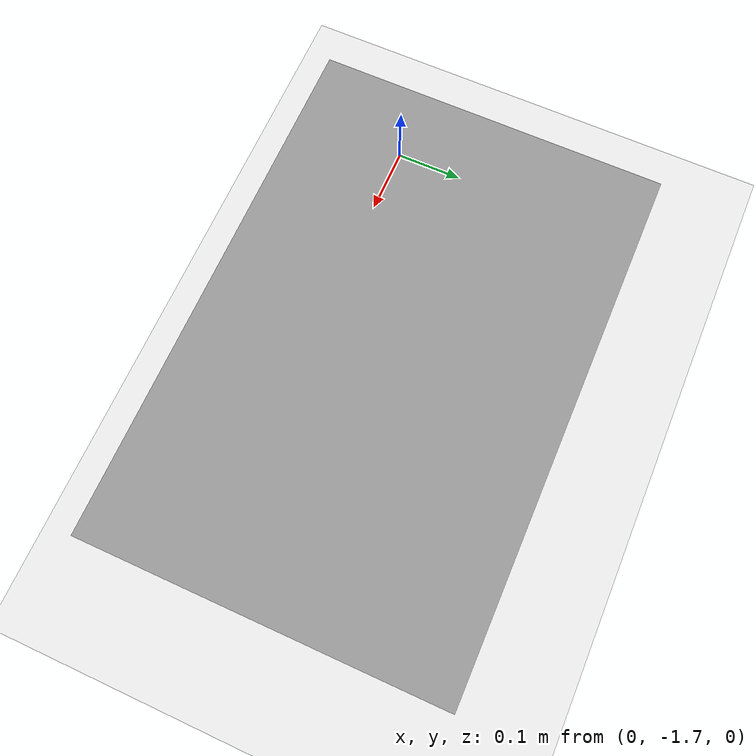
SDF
<sdf version="1.5">
 <world name="default">
  <model name="ground_plane">
   <static>1</static>
   <link name="link">
    <collision name="collision">
     <laser_retro>50</laser_retro>
     <geometry><plane><normal>0 0 1</normal><size>100 100</size></plane></geometry>
     <surface><friction><ode><mu>100</mu><mu2>50</mu2></ode></friction></surface>
    </collision>
    <visual name="visual">
     <cast_shadows>0</cast_shadows>
     <geometry><plane><normal>0 0 1</normal><size>100 100</size></plane></geometry>
     <material>
      <script><uri>file://media/materials/scripts/gazebo.material</uri><name>Gazebo/Grey</name></script>
     </material>
    </visual>
   </link>
  </model>
  <light name="sun" type="directional">
   <pose>0 0 10 0 -0 0</pose>
   <diffuse>0.8 0.8 0.8 1</diffuse>
   <specular>0.2 0.2 0.2 1</specular>
   <attenuation>
    <range>1000</range>
    <constant>0.9</constant>
    <linear>0.01</linear>
    <quadratic>0.001</quadratic>
   </attenuation>
   <direction>-0.5 0.1 -0.9</direction>
  </light>
  <physics name="default_physics" default="0" type="ode">
   <max_step_size>0.001</max_step_size>
   <real_time_factor>1</real_time_factor>
   <real_time_update_rate>1000</real_time_update_rate>
   <gravity>0 0 -9.8</gravity>
   <magnetic_field>5.5645e-06 2.28758e-05 -4.23884e-05</magnetic_field>
  </physics>
  <scene><ambient>0.4 0.4 0.4 1</ambient><background>0.7 0.7 0.7 1</background><shadows>1</shadows></scene>
  <audio><device>default</device></audio>
  <spherical_coordinates>
   <surface_model>EARTH_WGS84</surface_model>
   <latitude_deg>0</latitude_deg>
   <longitude_deg>0</longitude_deg>
   <elevation>0</elevation>
   <heading_deg>0</heading_deg>
  </spherical_coordinates>
  <model name="unit_box_1">
   <pose>0.409069 -1.5454 0.028046 -2.7e-05 -0 -1e-06</pose>
   <link name="link">
    <inertial>
     <mass>1</mass>
     <inertia><ixx>1</ixx><ixy>0</ixy><ixz>0</ixz><iyy>1</iyy><iyz>0</iyz><izz>1</izz></inertia>
    </inertial>
    <collision name="collision">
     <laser_retro>255</laser_retro>
     <geometry><box><size>0.353555 0.185816 0.056088</size></box></geometry>
    </collision>
    <visual name="visual">
     <geometry><box><size>0.585301 0.394806 0.586764</size></box></geometry>
     <material>
      <script><uri>file://media/materials/scripts/gazebo.material</uri><name>Gazebo/Grey</name></script>
     </material>
    </visual>
   </link>
  </model>
 </world>
</sdf>
